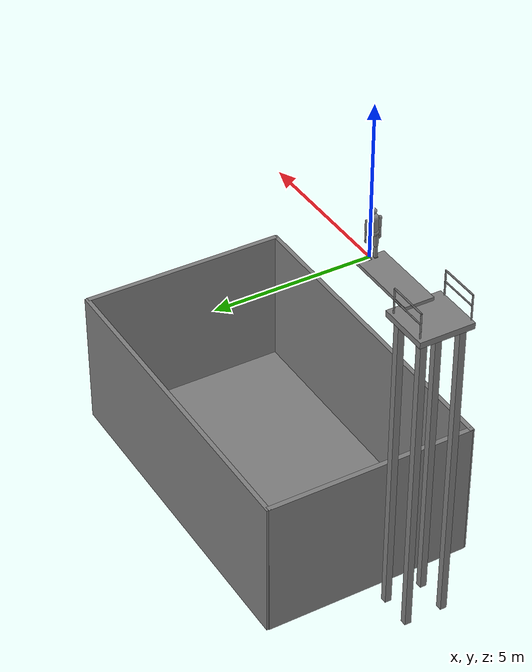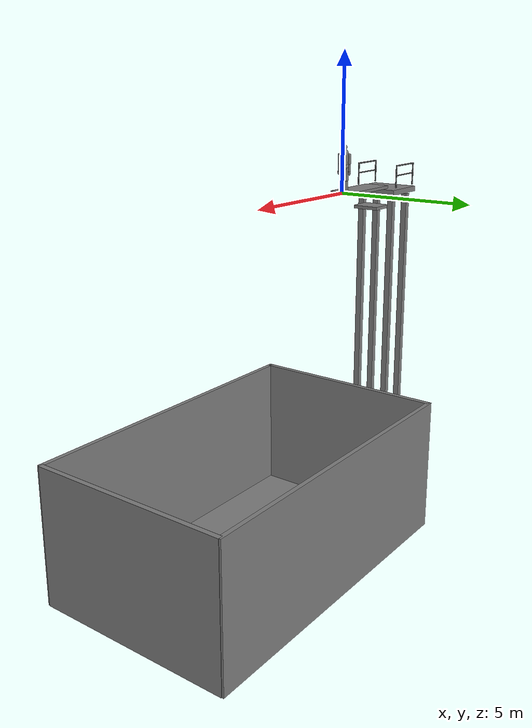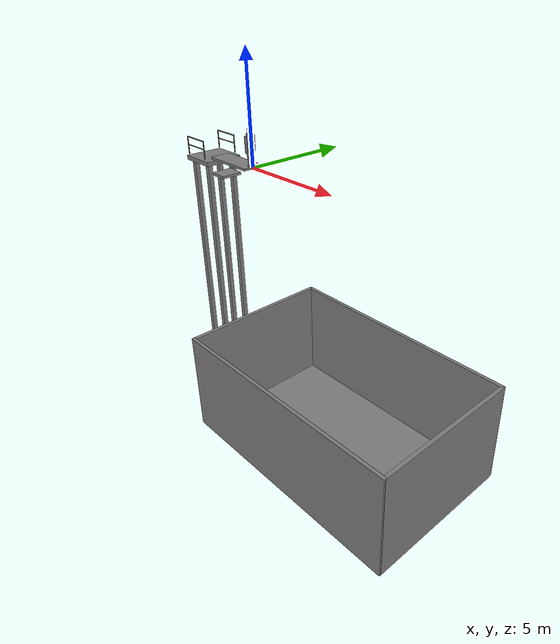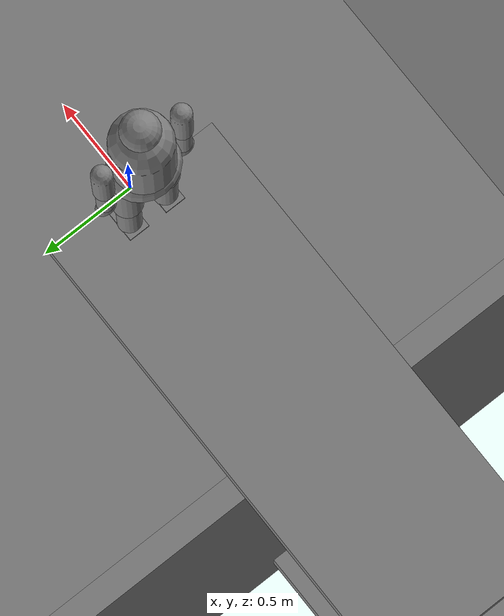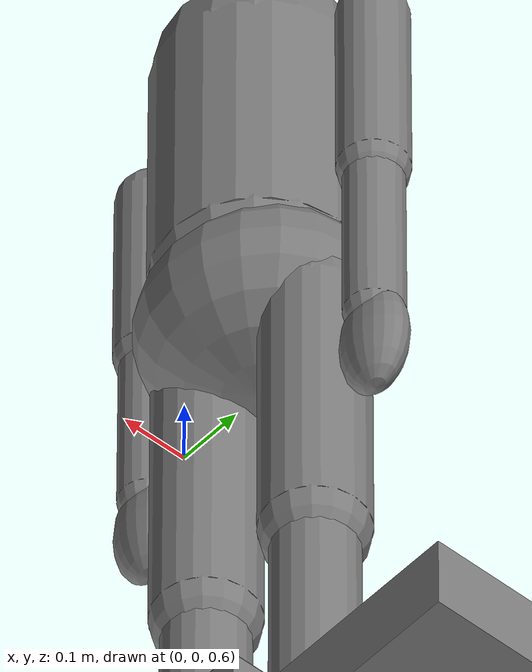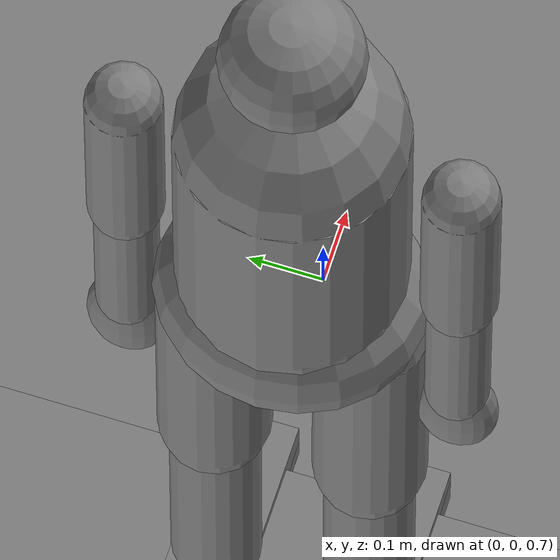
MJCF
<!-- v7 adds paired physical hip adduction; v6: each foot pitch lumps ankle and midfoot plantarflexion; torque remains 100 Nm. -->
<mujoco model="learn_to_dive_articulated">
  <compiler angle="radian" autolimits="true" />
  <option timestep="0.002" gravity="0 0 -9.81" integrator="implicitfast" solver="Newton" iterations="30" tolerance="1e-9">
    <flag warmstart="disable" />
  </option>
  <size nconmax="160" njmax="600" />
  <default>
    <joint damping="1.8" armature="0.025" limited="true" />
    <geom friction="0.8 0.02 0.002" solref="0.008 1" solimp="0.95 0.99 0.001" condim="3" />
    <position ctrllimited="true" forcelimited="true" />
    <default class="arm">
      <joint damping="0.7" armature="0.01" />
      <geom type="capsule" size="0.05" />
    </default>
    <default class="leg">
      <geom type="capsule" size="0.075" />
    </default>
  </default>
  <worldbody>
    <body name="board" pos="-1.275 0 0">
      <joint name="board_spring" type="slide" axis="0 0 1" range="-0.25 0.04" stiffness="18000" damping="140" springref="0" />
      <geom name="board_surface" type="box" size="1.275 0.48 0.055" mass="24" />
    </body>
    <body name="pelvis" pos="-0.13 0 0.95">
      <freejoint name="root" />
      <geom name="hip_geom" type="ellipsoid" size="0.16 0.18 0.14" mass="8" />
      <site name="pelvis" pos="0 0 0" />
      <body name="torso" pos="0 0 0.08">
        <geom type="capsule" fromto="0 0 0 0 0 0.39" size="0.15" mass="26" name="athlete_geom_2" />
        <site name="chest" pos="0 0 0.36" />
        <site name="neck" pos="0 0 0.51" />
        <body name="head" pos="0 0 0.61">
          <geom type="sphere" size="0.094" mass="5" name="athlete_geom_3" />
          <site name="head" pos="0 0 0" />
        </body>
        <body name="upper_arm_L" pos="0 0.22 0.34" childclass="arm">
          <joint name="shoulder_pitch_L" type="hinge" axis="0 -1 0" range="-0.6 3.25" />
          <joint name="shoulder_roll_L" type="hinge" axis="1 0 0" range="-1.2 1.2" />
          <geom fromto="0 0 0 0 0 -0.30" mass="2.1" name="athlete_geom_4" />
          <site name="shoulderL" />
          <body name="forearm_L" pos="0 0 -0.30">
            <joint name="elbow_L" axis="0 -1 0" range="0 2.4" />
            <geom fromto="0 0 0 0 0 -0.28" size="0.042" mass="1.3" name="athlete_geom_5" />
            <site name="elbowL" />
            <body name="hand_L" pos="0 0 -0.28">
              <geom type="ellipsoid" size="0.038 0.055 0.09" pos="0 0 -0.055" mass="0.6" name="athlete_geom_6" />
              <site name="wristL" />
              <site name="handL" pos="0 0 -0.13" />
            </body>
          </body>
        </body>
        <body name="upper_arm_R" pos="0 -0.22 0.34" childclass="arm">
          <joint name="shoulder_pitch_R" type="hinge" axis="0 -1 0" range="-0.6 3.25" />
          <joint name="shoulder_roll_R" type="hinge" axis="1 0 0" range="-1.2 1.2" />
          <geom fromto="0 0 0 0 0 -0.30" mass="2.1" name="athlete_geom_7" />
          <site name="shoulderR" />
          <body name="forearm_R" pos="0 0 -0.30">
            <joint name="elbow_R" axis="0 -1 0" range="0 2.4" />
            <geom fromto="0 0 0 0 0 -0.28" size="0.042" mass="1.3" name="athlete_geom_8" />
            <site name="elbowR" />
            <body name="hand_R" pos="0 0 -0.28">
              <geom type="ellipsoid" size="0.038 0.055 0.09" pos="0 0 -0.055" mass="0.6" name="athlete_geom_9" />
              <site name="wristR" />
              <site name="handR" pos="0 0 -0.13" />
            </body>
          </body>
        </body>
      </body>
      <body name="thigh_L" pos="0 0.105 -0.055" childclass="leg">
        <joint name="hip_L" axis="0 -1 0" range="-0.5 2.3" />
<joint name="hip_adduction_L" axis="-1 0 0" range="-0.2 0.25" damping="2" />
        <geom fromto="0 0 0 0 0 -0.42" mass="7" name="athlete_geom_10" />
        <site name="hipL" />
        <body name="shin_L" pos="0 0 -0.42">
          <joint name="knee_L" axis="0 1 0" range="0 2.7" />
          <geom fromto="0 0 0 0 0 -0.42" size="0.06" mass="3.5" name="athlete_geom_11" />
          <site name="kneeL" />
          <body name="foot_L" pos="0 0 -0.42">
            <joint name="ankle_L" axis="0 1 0" range="-0.6 1.4" />
            <geom type="box" size="0.13 0.055 0.04" pos="0.055 0 -0.025" mass="1" name="athlete_geom_12" />
            <site name="contactL" type="box" size="0.13 0.055 0.041" pos="0.055 0 -0.025" />
            <site name="ankleL" />
            <site name="toeL" pos="0.17 0 -0.025" />
          </body>
        </body>
      </body>
      <body name="thigh_R" pos="0 -0.105 -0.055" childclass="leg">
        <joint name="hip_R" axis="0 -1 0" range="-0.5 2.3" />
<joint name="hip_adduction_R" axis="1 0 0" range="-0.2 0.25" damping="2" />
        <geom fromto="0 0 0 0 0 -0.42" mass="7" name="athlete_geom_13" />
        <site name="hipR" />
        <body name="shin_R" pos="0 0 -0.42">
          <joint name="knee_R" axis="0 1 0" range="0 2.7" />
          <geom fromto="0 0 0 0 0 -0.42" size="0.06" mass="3.5" name="athlete_geom_14" />
          <site name="kneeR" />
          <body name="foot_R" pos="0 0 -0.42">
            <joint name="ankle_R" axis="0 1 0" range="-0.6 1.4" />
            <geom type="box" size="0.13 0.055 0.04" pos="0.055 0 -0.025" mass="1" name="athlete_geom_15" />
            <site name="contactR" type="box" size="0.13 0.055 0.041" pos="0.055 0 -0.025" />
            <site name="ankleR" />
            <site name="toeR" pos="0.17 0 -0.025" />
          </body>
        </body>
      </body>
    </body>
    <body name="pool" mocap="true" pos="0 0 -7.5">
      <geom name="pool_floor" type="box" pos="5.45 0 -5.08" size="5.9 3.575 .08" density="0" friction=".8 .02 .002" />
      <geom name="pool_left" type="box" pos="-.53 0 -2.5" size=".09 3.65 2.5" density="0" friction=".8 .02 .002" />
      <geom name="pool_right" type="box" pos="11.43 0 -2.5" size=".09 3.65 2.5" density="0" friction=".8 .02 .002" />
      <geom name="pool_near" type="box" pos="5.45 -3.64 -2.5" size="6.05 .08 2.5" density="0" friction=".8 .02 .002" />
      <geom name="pool_far" type="box" pos="5.45 3.64 -2.5" size="6.05 .08 2.5" density="0" friction=".8 .02 .002" />
    </body>
    <body name="stand">
      <geom name="stand_slab" type="box" pos="-3.1 0 -.17" size=".85 .9 .10" density="0" />
      <geom name="spring_housing" type="box" pos="-2.14 0 -.74" size=".44 .5 .06" density="0" />
      <geom type="box" pos="-3.66 -0.64 -5.675" size=".11 .11 5.325" density="0" />
      <geom type="box" pos="-3.66 0.64 -5.675" size=".11 .11 5.325" density="0" />
      <geom type="box" pos="-2.56 -0.64 -5.675" size=".11 .11 5.325" density="0" />
      <geom type="box" pos="-2.56 0.64 -5.675" size=".11 .11 5.325" density="0" />
      <geom type="capsule" fromto="-3.84 -0.83 .01 -3.84 -0.83 .82" size=".026" density="0" />
      <geom type="capsule" fromto="-2.54 -0.83 .01 -2.54 -0.83 .82" size=".026" density="0" />
      <geom type="capsule" fromto="-3.84 -0.83 .82 -2.54 -0.83 .82" size=".026" density="0" />
      <geom type="capsule" fromto="-3.81 -0.83 .45 -2.57 -0.83 .45" size=".022" density="0" />
      <geom type="capsule" fromto="-3.84 0.83 .01 -3.84 0.83 .82" size=".026" density="0" />
      <geom type="capsule" fromto="-2.54 0.83 .01 -2.54 0.83 .82" size=".026" density="0" />
      <geom type="capsule" fromto="-3.84 0.83 .82 -2.54 0.83 .82" size=".026" density="0" />
      <geom type="capsule" fromto="-3.81 0.83 .45 -2.57 0.83 .45" size=".022" density="0" />
    </body>
  </worldbody>
  <contact>
    <exclude body1="board" body2="stand" />
    <exclude body1="torso" body2="thigh_L" />
    <exclude body1="torso" body2="thigh_R" />
  </contact>
  <actuator>
    <position name="hip_L" joint="hip_L" kp="180" kv="18" ctrlrange="-0.5 2.3" forcerange="-160 160" />
    <position name="knee_L" joint="knee_L" kp="180" kv="18" ctrlrange="0 2.7" forcerange="-180 180" />
    <position name="ankle_L" joint="ankle_L" kp="100" kv="10" ctrlrange="-0.6 1.4" forcerange="-100 100" />
    <position name="hip_R" joint="hip_R" kp="180" kv="18" ctrlrange="-0.5 2.3" forcerange="-160 160" />
    <position name="knee_R" joint="knee_R" kp="180" kv="18" ctrlrange="0 2.7" forcerange="-180 180" />
    <position name="ankle_R" joint="ankle_R" kp="100" kv="10" ctrlrange="-0.6 1.4" forcerange="-100 100" />
    <position name="shoulder_pitch_L" joint="shoulder_pitch_L" kp="65" kv="6" ctrlrange="-0.6 3.25" forcerange="-65 65" />
    <position name="shoulder_roll_L" joint="shoulder_roll_L" kp="45" kv="5" ctrlrange="-1.2 1.2" forcerange="-45 45" />
    <position name="elbow_L" joint="elbow_L" kp="45" kv="4" ctrlrange="0 2.4" forcerange="-35 35" />
    <position name="shoulder_pitch_R" joint="shoulder_pitch_R" kp="65" kv="6" ctrlrange="-0.6 3.25" forcerange="-65 65" />
    <position name="shoulder_roll_R" joint="shoulder_roll_R" kp="45" kv="5" ctrlrange="-1.2 1.2" forcerange="-45 45" />
    <position name="elbow_R" joint="elbow_R" kp="45" kv="4" ctrlrange="0 2.4" forcerange="-35 35" />
  <position name="hip_adduction_L" joint="hip_adduction_L" kp="100" kv="10" ctrlrange="-0.15 0.18" forcerange="-80 80" />
<position name="hip_adduction_R" joint="hip_adduction_R" kp="100" kv="10" ctrlrange="-0.15 0.18" forcerange="-80 80" />
</actuator>
  <sensor>
    <subtreecom name="com" body="pelvis" />
    <subtreelinvel name="com_velocity" body="pelvis" />
    <subtreeangmom name="angular_momentum" body="pelvis" />
    <framequat name="orientation" objtype="body" objname="pelvis" />
    <frameangvel name="omega" objtype="body" objname="pelvis" />
    <framepos name="toe_left" objtype="site" objname="toeL" />
    <framepos name="toe_right" objtype="site" objname="toeR" />
    <framepos name="hand_left" objtype="site" objname="handL" />
    <framepos name="hand_right" objtype="site" objname="handR" />
    <framepos name="head_position" objtype="site" objname="head" />
    <framepos name="chest_position" objtype="site" objname="chest" />
    <framepos name="pelvis_position" objtype="site" objname="pelvis" />
    <framepos name="knee_left" objtype="site" objname="kneeL" />
    <framepos name="knee_right" objtype="site" objname="kneeR" />
    <touch name="left_contact" site="contactL" />
    <touch name="right_contact" site="contactR" />
    <framepos name="water_pos_1" objtype="geom" objname="hip_geom" />
    <framequat name="water_quat_1" objtype="geom" objname="hip_geom" />
    <framepos name="water_pos_2" objtype="geom" objname="athlete_geom_2" />
    <framequat name="water_quat_2" objtype="geom" objname="athlete_geom_2" />
    <framepos name="water_pos_3" objtype="geom" objname="athlete_geom_3" />
    <framequat name="water_quat_3" objtype="geom" objname="athlete_geom_3" />
    <framepos name="water_pos_4" objtype="geom" objname="athlete_geom_4" />
    <framequat name="water_quat_4" objtype="geom" objname="athlete_geom_4" />
    <framepos name="water_pos_5" objtype="geom" objname="athlete_geom_5" />
    <framequat name="water_quat_5" objtype="geom" objname="athlete_geom_5" />
    <framepos name="water_pos_6" objtype="geom" objname="athlete_geom_6" />
    <framequat name="water_quat_6" objtype="geom" objname="athlete_geom_6" />
    <framepos name="water_pos_7" objtype="geom" objname="athlete_geom_7" />
    <framequat name="water_quat_7" objtype="geom" objname="athlete_geom_7" />
    <framepos name="water_pos_8" objtype="geom" objname="athlete_geom_8" />
    <framequat name="water_quat_8" objtype="geom" objname="athlete_geom_8" />
    <framepos name="water_pos_9" objtype="geom" objname="athlete_geom_9" />
    <framequat name="water_quat_9" objtype="geom" objname="athlete_geom_9" />
    <framepos name="water_pos_10" objtype="geom" objname="athlete_geom_10" />
    <framequat name="water_quat_10" objtype="geom" objname="athlete_geom_10" />
    <framepos name="water_pos_11" objtype="geom" objname="athlete_geom_11" />
    <framequat name="water_quat_11" objtype="geom" objname="athlete_geom_11" />
    <framepos name="water_pos_12" objtype="geom" objname="athlete_geom_12" />
    <framequat name="water_quat_12" objtype="geom" objname="athlete_geom_12" />
    <framepos name="water_pos_13" objtype="geom" objname="athlete_geom_13" />
    <framequat name="water_quat_13" objtype="geom" objname="athlete_geom_13" />
    <framepos name="water_pos_14" objtype="geom" objname="athlete_geom_14" />
    <framequat name="water_quat_14" objtype="geom" objname="athlete_geom_14" />
    <framepos name="water_pos_15" objtype="geom" objname="athlete_geom_15" />
    <framequat name="water_quat_15" objtype="geom" objname="athlete_geom_15" />
    <contact name="board_contact_1" geom1="board_surface" geom2="hip_geom" data="found force" reduce="netforce" />
    <contact name="board_contact_2" geom1="board_surface" geom2="athlete_geom_2" data="found force" reduce="netforce" />
    <contact name="board_contact_3" geom1="board_surface" geom2="athlete_geom_3" data="found force" reduce="netforce" />
    <contact name="board_contact_4" geom1="board_surface" geom2="athlete_geom_4" data="found force" reduce="netforce" />
    <contact name="board_contact_5" geom1="board_surface" geom2="athlete_geom_5" data="found force" reduce="netforce" />
    <contact name="board_contact_6" geom1="board_surface" geom2="athlete_geom_6" data="found force" reduce="netforce" />
    <contact name="board_contact_7" geom1="board_surface" geom2="athlete_geom_7" data="found force" reduce="netforce" />
    <contact name="board_contact_8" geom1="board_surface" geom2="athlete_geom_8" data="found force" reduce="netforce" />
    <contact name="board_contact_9" geom1="board_surface" geom2="athlete_geom_9" data="found force" reduce="netforce" />
    <contact name="board_contact_10" geom1="board_surface" geom2="athlete_geom_10" data="found force" reduce="netforce" />
    <contact name="board_contact_11" geom1="board_surface" geom2="athlete_geom_11" data="found force" reduce="netforce" />
    <contact name="board_contact_12" geom1="board_surface" geom2="athlete_geom_12" data="found force" reduce="netforce" />
    <contact name="board_contact_13" geom1="board_surface" geom2="athlete_geom_13" data="found force" reduce="netforce" />
    <contact name="board_contact_14" geom1="board_surface" geom2="athlete_geom_14" data="found force" reduce="netforce" />
    <contact name="board_contact_15" geom1="board_surface" geom2="athlete_geom_15" data="found force" reduce="netforce" />
    <contact name="stand_contact_1" body1="stand" geom2="hip_geom" data="found force" reduce="netforce" />
    <contact name="stand_contact_2" body1="stand" geom2="athlete_geom_2" data="found force" reduce="netforce" />
    <contact name="stand_contact_3" body1="stand" geom2="athlete_geom_3" data="found force" reduce="netforce" />
    <contact name="stand_contact_4" body1="stand" geom2="athlete_geom_4" data="found force" reduce="netforce" />
    <contact name="stand_contact_5" body1="stand" geom2="athlete_geom_5" data="found force" reduce="netforce" />
    <contact name="stand_contact_6" body1="stand" geom2="athlete_geom_6" data="found force" reduce="netforce" />
    <contact name="stand_contact_7" body1="stand" geom2="athlete_geom_7" data="found force" reduce="netforce" />
    <contact name="stand_contact_8" body1="stand" geom2="athlete_geom_8" data="found force" reduce="netforce" />
    <contact name="stand_contact_9" body1="stand" geom2="athlete_geom_9" data="found force" reduce="netforce" />
    <contact name="stand_contact_10" body1="stand" geom2="athlete_geom_10" data="found force" reduce="netforce" />
    <contact name="stand_contact_11" body1="stand" geom2="athlete_geom_11" data="found force" reduce="netforce" />
    <contact name="stand_contact_12" body1="stand" geom2="athlete_geom_12" data="found force" reduce="netforce" />
    <contact name="stand_contact_13" body1="stand" geom2="athlete_geom_13" data="found force" reduce="netforce" />
    <contact name="stand_contact_14" body1="stand" geom2="athlete_geom_14" data="found force" reduce="netforce" />
    <contact name="stand_contact_15" body1="stand" geom2="athlete_geom_15" data="found force" reduce="netforce" />

    <!-- V8 append-only world velocities at each single-geom body COM. -->
    <framelinvel name="water_linear_0" objtype="geom" objname="hip_geom" />
    <frameangvel name="water_angular_0" objtype="geom" objname="hip_geom" />
    <framelinvel name="water_linear_1" objtype="geom" objname="athlete_geom_2" />
    <frameangvel name="water_angular_1" objtype="geom" objname="athlete_geom_2" />
    <framelinvel name="water_linear_2" objtype="geom" objname="athlete_geom_3" />
    <frameangvel name="water_angular_2" objtype="geom" objname="athlete_geom_3" />
    <framelinvel name="water_linear_3" objtype="geom" objname="athlete_geom_4" />
    <frameangvel name="water_angular_3" objtype="geom" objname="athlete_geom_4" />
    <framelinvel name="water_linear_4" objtype="geom" objname="athlete_geom_5" />
    <frameangvel name="water_angular_4" objtype="geom" objname="athlete_geom_5" />
    <framelinvel name="water_linear_5" objtype="geom" objname="athlete_geom_6" />
    <frameangvel name="water_angular_5" objtype="geom" objname="athlete_geom_6" />
    <framelinvel name="water_linear_6" objtype="geom" objname="athlete_geom_7" />
    <frameangvel name="water_angular_6" objtype="geom" objname="athlete_geom_7" />
    <framelinvel name="water_linear_7" objtype="geom" objname="athlete_geom_8" />
    <frameangvel name="water_angular_7" objtype="geom" objname="athlete_geom_8" />
    <framelinvel name="water_linear_8" objtype="geom" objname="athlete_geom_9" />
    <frameangvel name="water_angular_8" objtype="geom" objname="athlete_geom_9" />
    <framelinvel name="water_linear_9" objtype="geom" objname="athlete_geom_10" />
    <frameangvel name="water_angular_9" objtype="geom" objname="athlete_geom_10" />
    <framelinvel name="water_linear_10" objtype="geom" objname="athlete_geom_11" />
    <frameangvel name="water_angular_10" objtype="geom" objname="athlete_geom_11" />
    <framelinvel name="water_linear_11" objtype="geom" objname="athlete_geom_12" />
    <frameangvel name="water_angular_11" objtype="geom" objname="athlete_geom_12" />
    <framelinvel name="water_linear_12" objtype="geom" objname="athlete_geom_13" />
    <frameangvel name="water_angular_12" objtype="geom" objname="athlete_geom_13" />
    <framelinvel name="water_linear_13" objtype="geom" objname="athlete_geom_14" />
    <frameangvel name="water_angular_13" objtype="geom" objname="athlete_geom_14" />
    <framelinvel name="water_linear_14" objtype="geom" objname="athlete_geom_15" />
    <frameangvel name="water_angular_14" objtype="geom" objname="athlete_geom_15" />
  </sensor>
<equality><joint name="rigid_platform" joint1="board_spring" polycoef="0 0 0 0 0" active="false" solref="0.002 1" /></equality></mujoco>
